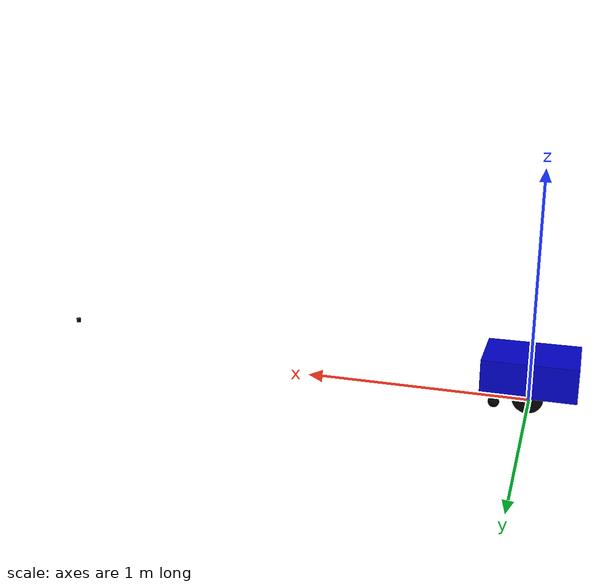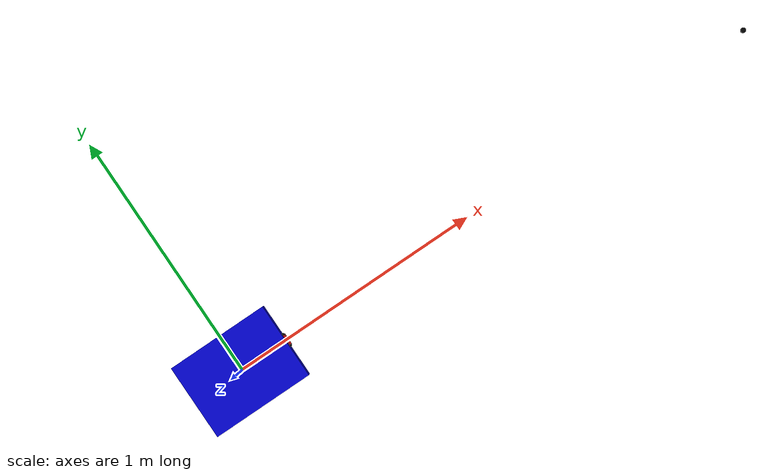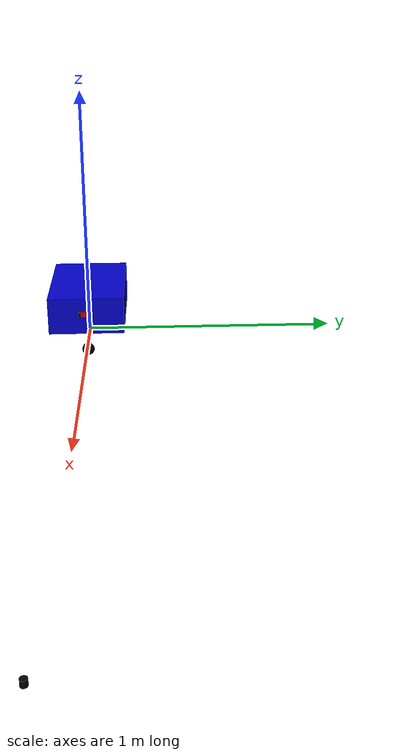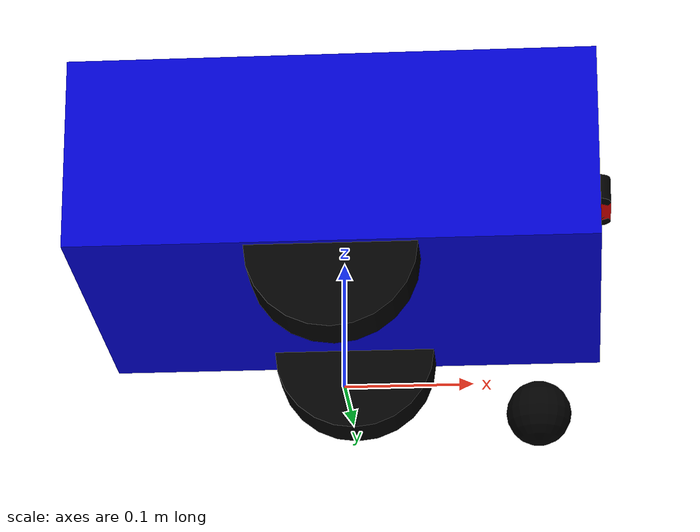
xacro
<?xml version="1.0"?>
<robot name="mobile_robot" xmlns:xacro="http://www.ros.org/wiki/xacro">

  <!-- Define properties -->
  <xacro:property name="chassis_width" value="0.3"/>
  <xacro:property name="chassis_length" value="0.4"/>
  <xacro:property name="chassis_height" value="0.15"/>
  <xacro:property name="wheel_radius" value="0.065"/>
  <xacro:property name="wheel_width" value="0.04"/>
  <xacro:property name="wheel_separation" value="0.25"/>
  <xacro:property name="caster_radius" value="0.025"/>

  <!-- Materials -->
  <material name="blue">
    <color rgba="0 0 0.8 1"/>
  </material>

  <material name="black">
    <color rgba="0 0 0 1"/>
  </material>

  <material name="red">
    <color rgba="0.8 0 0 1"/>
  </material>

  <!-- Base footprint link (for navigation) -->
  <link name="base_footprint">
    <visual>
      <origin xyz="0 0 0" rpy="0 0 0"/>
      <geometry>
        <box size="0.001 0.001 0.001"/>
      </geometry>
    </visual>
  </link>

  <!-- Base link (chassis) -->
  <link name="base_link">
    <visual>
      <origin xyz="0 0 ${chassis_height/2}" rpy="0 0 0"/>
      <geometry>
        <box size="${chassis_length} ${chassis_width} ${chassis_height}"/>
      </geometry>
      <material name="blue"/>
    </visual>
    <collision>
      <origin xyz="0 0 ${chassis_height/2}" rpy="0 0 0"/>
      <geometry>
        <box size="${chassis_length} ${chassis_width} ${chassis_height}"/>
      </geometry>
    </collision>
    <inertial>
      <origin xyz="0 0 ${chassis_height/2}" rpy="0 0 0"/>
      <mass value="5.0"/>
      <inertia ixx="0.083" ixy="0.0" ixz="0.0" iyy="0.083" iyz="0.0" izz="0.083"/>
    </inertial>
  </link>

  <!-- Base footprint to base link joint -->
  <joint name="base_footprint_joint" type="fixed">
    <parent link="base_footprint"/>
    <child link="base_link"/>
    <origin xyz="0 0 ${wheel_radius}" rpy="0 0 0"/>
  </joint>

  <!-- Left wheel -->
  <link name="left_wheel">
    <visual>
      <origin xyz="0 0 0" rpy="${pi/2} 0 0"/>
      <geometry>
        <cylinder radius="${wheel_radius}" length="${wheel_width}"/>
      </geometry>
      <material name="black"/>
    </visual>
    <collision>
      <origin xyz="0 0 0" rpy="${pi/2} 0 0"/>
      <geometry>
        <cylinder radius="${wheel_radius}" length="${wheel_width}"/>
      </geometry>
    </collision>
    <inertial>
      <origin xyz="0 0 0" rpy="${pi/2} 0 0"/>
      <mass value="0.5"/>
      <inertia ixx="0.001" ixy="0.0" ixz="0.0" iyy="0.001" iyz="0.0" izz="0.001"/>
    </inertial>
  </link>

  <!-- Left wheel joint -->
  <joint name="left_wheel_joint" type="continuous">
    <parent link="base_link"/>
    <child link="left_wheel"/>
    <origin xyz="0 ${wheel_separation/2} 0" rpy="0 0 0"/>
    <axis xyz="0 1 0"/>
  </joint>

  <!-- Right wheel -->
  <link name="right_wheel">
    <visual>
      <origin xyz="0 0 0" rpy="${pi/2} 0 0"/>
      <geometry>
        <cylinder radius="${wheel_radius}" length="${wheel_width}"/>
      </geometry>
      <material name="black"/>
    </visual>
    <collision>
      <origin xyz="0 0 0" rpy="${pi/2} 0 0"/>
      <geometry>
        <cylinder radius="${wheel_radius}" length="${wheel_width}"/>
      </geometry>
    </collision>
    <inertial>
      <origin xyz="0 0 0" rpy="${pi/2} 0 0"/>
      <mass value="0.5"/>
      <inertia ixx="0.001" ixy="0.0" ixz="0.0" iyy="0.001" iyz="0.0" izz="0.001"/>
    </inertial>
  </link>

  <!-- Right wheel joint -->
  <joint name="right_wheel_joint" type="continuous">
    <parent link="base_link"/>
    <child link="right_wheel"/>
    <origin xyz="0 ${-wheel_separation/2} 0" rpy="0 0 0"/>
    <axis xyz="0 1 0"/>
  </joint>

  <!-- Caster wheel (front) -->
  <link name="front_caster">
    <visual>
      <origin xyz="0 0 0" rpy="0 0 0"/>
      <geometry>
        <sphere radius="${caster_radius}"/>
      </geometry>
      <material name="black"/>
    </visual>
    <collision>
      <origin xyz="0 0 0" rpy="0 0 0"/>
      <geometry>
        <sphere radius="${caster_radius}"/>
      </geometry>
    </collision>
    <inertial>
      <origin xyz="0 0 0" rpy="0 0 0"/>
      <mass value="0.1"/>
      <inertia ixx="0.0001" ixy="0.0" ixz="0.0" iyy="0.0001" iyz="0.0" izz="0.0001"/>
    </inertial>
  </link>

  <!-- Front caster joint -->
  <joint name="front_caster_joint" type="fixed">
    <parent link="base_link"/>
    <child link="front_caster"/>
    <origin xyz="${chassis_length/2 - 0.05} 0 ${-chassis_height/2 - caster_radius + 0.01}" rpy="0 0 0"/>
  </joint>

  <!-- Ultrasonic sensor mount -->
  <link name="sensor_mount">
    <visual>
      <origin xyz="0 0 0" rpy="0 0 0"/>
      <geometry>
        <box size="0.02 0.04 0.02"/>
      </geometry>
      <material name="red"/>
    </visual>
    <collision>
      <origin xyz="0 0 0" rpy="0 0 0"/>
      <geometry>
        <box size="0.02 0.04 0.02"/>
      </geometry>
    </collision>
    <inertial>
      <origin xyz="0 0 0" rpy="0 0 0"/>
      <mass value="0.05"/>
      <inertia ixx="0.00001" ixy="0.0" ixz="0.0" iyy="0.00001" iyz="0.0" izz="0.00001"/>
    </inertial>
  </link>

  <!-- Sensor mount joint -->
  <joint name="sensor_mount_joint" type="fixed">
    <parent link="base_link"/>
    <child link="sensor_mount"/>
    <origin xyz="${chassis_length/2} 0 ${chassis_height/2 + 0.01}" rpy="0 0 0"/>
  </joint>

  <!-- Front ultrasonic sensor -->
  <link name="ultrasonic_front">
    <visual>
      <origin xyz="2 0 0" rpy="0 0 0"/>
      <geometry>
        <cylinder radius="0.01" length="0.02"/>
      </geometry>
      <material name="black"/>
    </visual>
  </link>

  <!-- Front sensor joint -->
  <joint name="ultrasonic_front_joint" type="fixed">
    <parent link="sensor_mount"/>
    <child link="ultrasonic_front"/>
    <origin xyz="0.01 0 0" rpy="0 0 0"/>
  </joint>

  <!-- Left ultrasonic sensor -->
  <link name="ultrasonic_left">
    <visual>
      <origin xyz="0 0 0" rpy="0 0 0"/>
      <geometry>
        <cylinder radius="0.01" length="0.02"/>
      </geometry>
      <material name="black"/>
    </visual>
  </link>

  <!-- Left sensor joint -->
  <joint name="ultrasonic_left_joint" type="fixed">
    <parent link="sensor_mount"/>
    <child link="ultrasonic_left"/>
    <origin xyz="0 0.02 0" rpy="0 0 ${pi/2}"/>
  </joint>

  <!-- Right ultrasonic sensor -->
  <link name="ultrasonic_right">
    <visual>
      <origin xyz="0 0 0" rpy="0 0 0"/>
      <geometry>
        <cylinder radius="0.01" length="0.02"/>
      </geometry>
      <material name="black"/>
    </visual>
  </link>

  <!-- Right sensor joint -->
  <joint name="ultrasonic_right_joint" type="fixed">
    <parent link="sensor_mount"/>
    <child link="ultrasonic_right"/>
    <origin xyz="0 -0.02 0" rpy="0 0 ${-pi/2}"/>
  </joint>

</robot>
